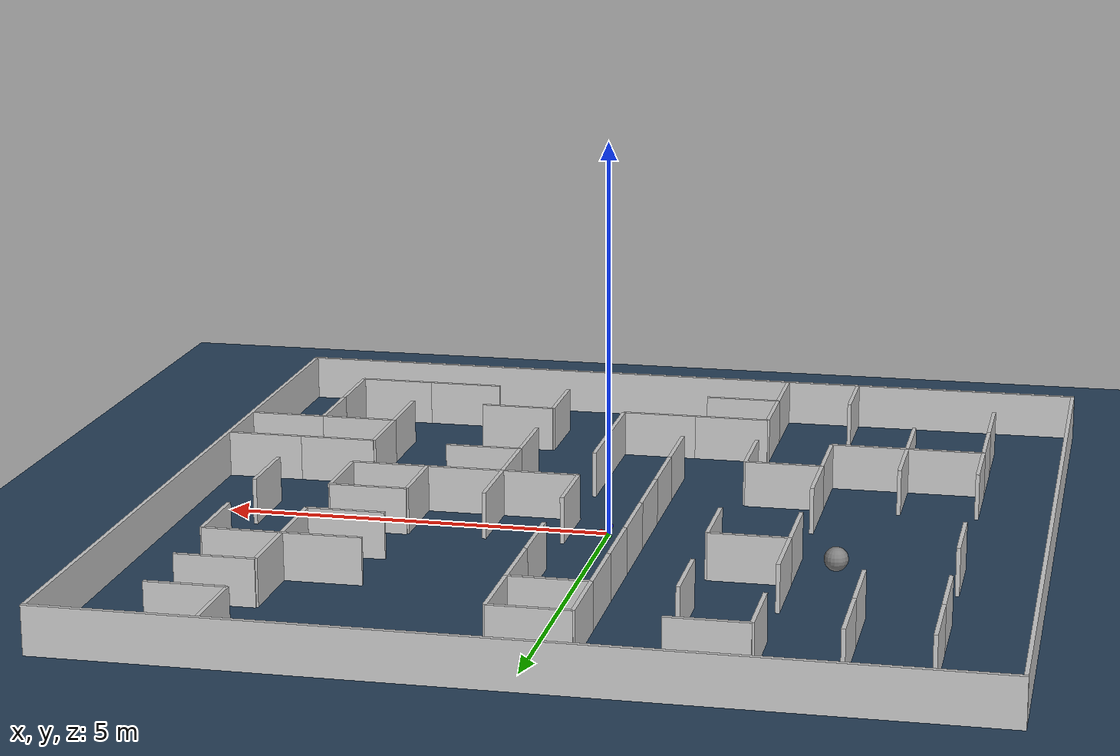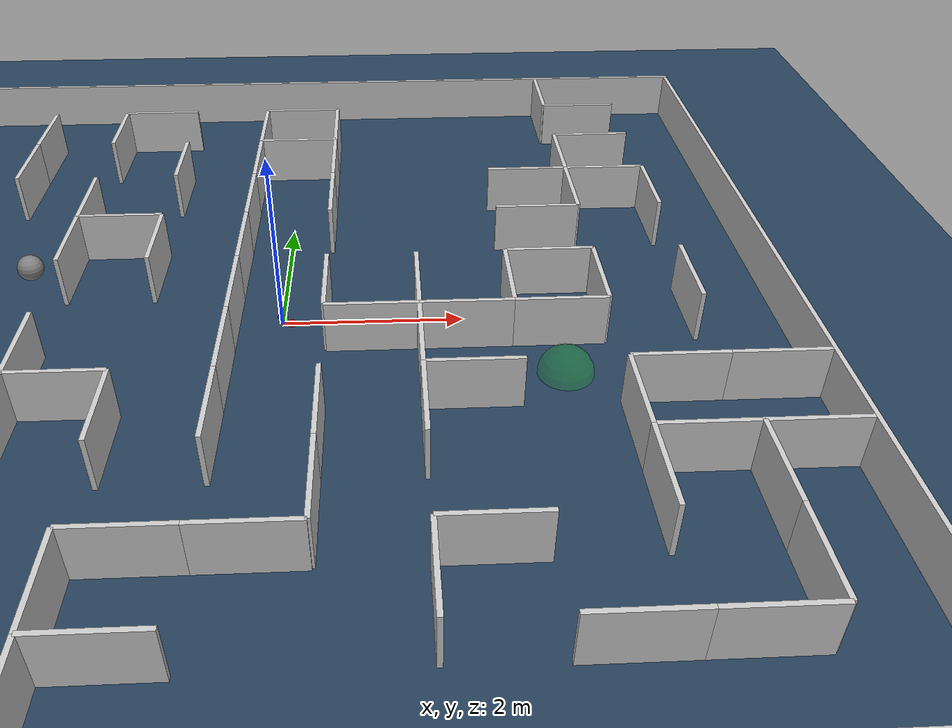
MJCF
<?xml version="1.0" ?>
<mujoco model="generated_maze_environment">
  <option timestep="0.01" integrator="RK4" cone="elliptic"/>
  <default>
    <geom density="1"/>
  </default>
  <asset>
    <texture builtin="gradient" height="3072" rgb1="0.3 0.5 0.7" rgb2="0 0 0" type="skybox" width="512"/>
    <texture builtin="checker" height="300" mark="edge" markrgb="0.8 0.8 0.8" name="groundplane" rgb1="0.2 0.3 0.4" rgb2="0.1 0.2 0.3" type="2d" width="300"/>
    <material name="groundplane" reflectance="0.2" texrepeat="5 5" texture="groundplane" texuniform="true"/>
    <material name="robot" rgba="0.0 1.0 0.0 1"/>
  </asset>
  <worldbody>
    <light dir="0 0 -1" directional="true" pos="0 0 1.5"/>
    <geom condim="4" friction="0.5 0.005 0.001" material="groundplane" name="floor" size="0 0 0.05" type="plane"/>
    <site name="origin_x" pos="0.1 0 0.0" rgba="1 0 0 1" size="0.05" type="sphere"/>
    <site name="origin_y" pos="0 0.1 0" rgba="0 1 0 1" size="0.05" type="sphere"/>
    <site name="origin_z" pos="0 0 0.1" rgba="0 0 1 1" size="0.05" type="sphere"/>
    <body name="walls">
      <geom name="boundary_top" condim="4" pos="0 5.525 0.3" rgba="0.8 0.8 0.8 1" size="5.55 0.025 0.3" type="box"/>
      <geom name="boundary_bottom" condim="4" pos="0 -5.525 0.3" rgba="0.8 0.8 0.8 1" size="5.55 0.025 0.3" type="box"/>
      <geom name="boundary_left" condim="4" pos="-5.525 0 0.3" rgba="0.8 0.8 0.8 1" size="0.025 5.5 0.3" type="box"/>
      <geom name="boundary_right" condim="4" pos="5.525 0 0.3" rgba="0.8 0.8 0.8 1" size="0.025 5.5 0.3" type="box"/>
      <geom name="hwall_1" condim="4" pos="-2.0 4.5 0.3" rgba="0.8 0.8 0.8 1" size="0.5 0.025 0.3" type="box"/>
      <geom name="hwall_2" condim="4" pos="0.0 4.5 0.3" rgba="0.8 0.8 0.8 1" size="0.5 0.025 0.3" type="box"/>
      <geom name="hwall_3" condim="4" pos="4.0 4.5 0.3" rgba="0.8 0.8 0.8 1" size="0.5 0.025 0.3" type="box"/>
      <geom name="hwall_4" condim="4" pos="0.0 3.5 0.3" rgba="0.8 0.8 0.8 1" size="0.5 0.025 0.3" type="box"/>
      <geom name="hwall_5" condim="4" pos="4.0 3.5 0.3" rgba="0.8 0.8 0.8 1" size="0.5 0.025 0.3" type="box"/>
      <geom name="hwall_6" condim="4" pos="3.0 2.5 0.3" rgba="0.8 0.8 0.8 1" size="0.5 0.025 0.3" type="box"/>
      <geom name="hwall_7" condim="4" pos="4.0 2.5 0.3" rgba="0.8 0.8 0.8 1" size="0.5 0.025 0.3" type="box"/>
      <geom name="hwall_8" condim="4" pos="-2.0 1.5 0.3" rgba="0.8 0.8 0.8 1" size="0.5 0.025 0.3" type="box"/>
      <geom name="hwall_9" condim="4" pos="3.0 1.5 0.3" rgba="0.8 0.8 0.8 1" size="0.5 0.025 0.3" type="box"/>
      <geom name="hwall_10" condim="4" pos="3.0 0.5 0.3" rgba="0.8 0.8 0.8 1" size="0.5 0.025 0.3" type="box"/>
      <geom name="hwall_11" condim="4" pos="1.0 -0.5 0.3" rgba="0.8 0.8 0.8 1" size="0.5 0.025 0.3" type="box"/>
      <geom name="hwall_12" condim="4" pos="2.0 -0.5 0.3" rgba="0.8 0.8 0.8 1" size="0.5 0.025 0.3" type="box"/>
      <geom name="hwall_13" condim="4" pos="3.0 -0.5 0.3" rgba="0.8 0.8 0.8 1" size="0.5 0.025 0.3" type="box"/>
      <geom name="hwall_14" condim="4" pos="-2.0 -1.5 0.3" rgba="0.8 0.8 0.8 1" size="0.5 0.025 0.3" type="box"/>
      <geom name="hwall_15" condim="4" pos="2.0 -1.5 0.3" rgba="0.8 0.8 0.8 1" size="0.5 0.025 0.3" type="box"/>
      <geom name="hwall_16" condim="4" pos="4.0 -1.5 0.3" rgba="0.8 0.8 0.8 1" size="0.5 0.025 0.3" type="box"/>
      <geom name="hwall_17" condim="4" pos="5.0 -1.5 0.3" rgba="0.8 0.8 0.8 1" size="0.5 0.025 0.3" type="box"/>
      <geom name="hwall_18" condim="4" pos="-4.0 -2.5 0.3" rgba="0.8 0.8 0.8 1" size="0.5 0.025 0.3" type="box"/>
      <geom name="hwall_19" condim="4" pos="-3.0 -2.5 0.3" rgba="0.8 0.8 0.8 1" size="0.5 0.025 0.3" type="box"/>
      <geom name="hwall_20" condim="4" pos="4.0 -2.5 0.3" rgba="0.8 0.8 0.8 1" size="0.5 0.025 0.3" type="box"/>
      <geom name="hwall_21" condim="4" pos="5.0 -2.5 0.3" rgba="0.8 0.8 0.8 1" size="0.5 0.025 0.3" type="box"/>
      <geom name="hwall_22" condim="4" pos="-1.0 -3.5 0.3" rgba="0.8 0.8 0.8 1" size="0.5 0.025 0.3" type="box"/>
      <geom name="hwall_23" condim="4" pos="0.0 -3.5 0.3" rgba="0.8 0.8 0.8 1" size="0.5 0.025 0.3" type="box"/>
      <geom name="hwall_24" condim="4" pos="2.0 -3.5 0.3" rgba="0.8 0.8 0.8 1" size="0.5 0.025 0.3" type="box"/>
      <geom name="hwall_25" condim="4" pos="-1.0 -4.5 0.3" rgba="0.8 0.8 0.8 1" size="0.5 0.025 0.3" type="box"/>
      <geom name="hwall_26" condim="4" pos="3.0 -4.5 0.3" rgba="0.8 0.8 0.8 1" size="0.5 0.025 0.3" type="box"/>
      <geom name="hwall_27" condim="4" pos="4.0 -4.5 0.3" rgba="0.8 0.8 0.8 1" size="0.5 0.025 0.3" type="box"/>
      <geom name="vwall_28" condim="4" pos="3.5 5.0 0.3" rgba="0.8 0.8 0.8 1" size="0.025 0.5 0.3" type="box"/>
      <geom name="vwall_29" condim="4" pos="-4.5 4.0 0.3" rgba="0.8 0.8 0.8 1" size="0.025 0.5 0.3" type="box"/>
      <geom name="vwall_30" condim="4" pos="-3.5 4.0 0.3" rgba="0.8 0.8 0.8 1" size="0.025 0.5 0.3" type="box"/>
      <geom name="vwall_31" condim="4" pos="-2.5 4.0 0.3" rgba="0.8 0.8 0.8 1" size="0.025 0.5 0.3" type="box"/>
      <geom name="vwall_32" condim="4" pos="-0.5 4.0 0.3" rgba="0.8 0.8 0.8 1" size="0.025 0.5 0.3" type="box"/>
      <geom name="vwall_33" condim="4" pos="0.5 4.0 0.3" rgba="0.8 0.8 0.8 1" size="0.025 0.5 0.3" type="box"/>
      <geom name="vwall_34" condim="4" pos="-4.5 3.0 0.3" rgba="0.8 0.8 0.8 1" size="0.025 0.5 0.3" type="box"/>
      <geom name="vwall_35" condim="4" pos="-3.5 3.0 0.3" rgba="0.8 0.8 0.8 1" size="0.025 0.5 0.3" type="box"/>
      <geom name="vwall_36" condim="4" pos="-1.5 3.0 0.3" rgba="0.8 0.8 0.8 1" size="0.025 0.5 0.3" type="box"/>
      <geom name="vwall_37" condim="4" pos="-0.5 3.0 0.3" rgba="0.8 0.8 0.8 1" size="0.025 0.5 0.3" type="box"/>
      <geom name="vwall_38" condim="4" pos="0.5 3.0 0.3" rgba="0.8 0.8 0.8 1" size="0.025 0.5 0.3" type="box"/>
      <geom name="vwall_39" condim="4" pos="3.5 3.0 0.3" rgba="0.8 0.8 0.8 1" size="0.025 0.5 0.3" type="box"/>
      <geom name="vwall_40" condim="4" pos="-2.5 2.0 0.3" rgba="0.8 0.8 0.8 1" size="0.025 0.5 0.3" type="box"/>
      <geom name="vwall_41" condim="4" pos="-0.5 2.0 0.3" rgba="0.8 0.8 0.8 1" size="0.025 0.5 0.3" type="box"/>
      <geom name="vwall_42" condim="4" pos="0.5 2.0 0.3" rgba="0.8 0.8 0.8 1" size="0.025 0.5 0.3" type="box"/>
      <geom name="vwall_43" condim="4" pos="3.5 2.0 0.3" rgba="0.8 0.8 0.8 1" size="0.025 0.5 0.3" type="box"/>
      <geom name="vwall_44" condim="4" pos="4.5 2.0 0.3" rgba="0.8 0.8 0.8 1" size="0.025 0.5 0.3" type="box"/>
      <geom name="vwall_45" condim="4" pos="-4.5 1.0 0.3" rgba="0.8 0.8 0.8 1" size="0.025 0.5 0.3" type="box"/>
      <geom name="vwall_46" condim="4" pos="-2.5 1.0 0.3" rgba="0.8 0.8 0.8 1" size="0.025 0.5 0.3" type="box"/>
      <geom name="vwall_47" condim="4" pos="-1.5 1.0 0.3" rgba="0.8 0.8 0.8 1" size="0.025 0.5 0.3" type="box"/>
      <geom name="vwall_48" condim="4" pos="-0.5 1.0 0.3" rgba="0.8 0.8 0.8 1" size="0.025 0.5 0.3" type="box"/>
      <geom name="vwall_49" condim="4" pos="-0.5 0.0 0.3" rgba="0.8 0.8 0.8 1" size="0.025 0.5 0.3" type="box"/>
      <geom name="vwall_50" condim="4" pos="0.5 0.0 0.3" rgba="0.8 0.8 0.8 1" size="0.025 0.5 0.3" type="box"/>
      <geom name="vwall_51" condim="4" pos="1.5 0.0 0.3" rgba="0.8 0.8 0.8 1" size="0.025 0.5 0.3" type="box"/>
      <geom name="vwall_52" condim="4" pos="2.5 0.0 0.3" rgba="0.8 0.8 0.8 1" size="0.025 0.5 0.3" type="box"/>
      <geom name="vwall_53" condim="4" pos="3.5 0.0 0.3" rgba="0.8 0.8 0.8 1" size="0.025 0.5 0.3" type="box"/>
      <geom name="vwall_54" condim="4" pos="4.5 0.0 0.3" rgba="0.8 0.8 0.8 1" size="0.025 0.5 0.3" type="box"/>
      <geom name="vwall_55" condim="4" pos="-2.5 -1.0 0.3" rgba="0.8 0.8 0.8 1" size="0.025 0.5 0.3" type="box"/>
      <geom name="vwall_56" condim="4" pos="-0.5 -1.0 0.3" rgba="0.8 0.8 0.8 1" size="0.025 0.5 0.3" type="box"/>
      <geom name="vwall_57" condim="4" pos="1.5 -1.0 0.3" rgba="0.8 0.8 0.8 1" size="0.025 0.5 0.3" type="box"/>
      <geom name="vwall_58" condim="4" pos="-4.5 -2.0 0.3" rgba="0.8 0.8 0.8 1" size="0.025 0.5 0.3" type="box"/>
      <geom name="vwall_59" condim="4" pos="-3.5 -2.0 0.3" rgba="0.8 0.8 0.8 1" size="0.025 0.5 0.3" type="box"/>
      <geom name="vwall_60" condim="4" pos="-2.5 -2.0 0.3" rgba="0.8 0.8 0.8 1" size="0.025 0.5 0.3" type="box"/>
      <geom name="vwall_61" condim="4" pos="-1.5 -2.0 0.3" rgba="0.8 0.8 0.8 1" size="0.025 0.5 0.3" type="box"/>
      <geom name="vwall_62" condim="4" pos="-0.5 -2.0 0.3" rgba="0.8 0.8 0.8 1" size="0.025 0.5 0.3" type="box"/>
      <geom name="vwall_63" condim="4" pos="0.5 -2.0 0.3" rgba="0.8 0.8 0.8 1" size="0.025 0.5 0.3" type="box"/>
      <geom name="vwall_64" condim="4" pos="1.5 -2.0 0.3" rgba="0.8 0.8 0.8 1" size="0.025 0.5 0.3" type="box"/>
      <geom name="vwall_65" condim="4" pos="3.5 -2.0 0.3" rgba="0.8 0.8 0.8 1" size="0.025 0.5 0.3" type="box"/>
      <geom name="vwall_66" condim="4" pos="-4.5 -3.0 0.3" rgba="0.8 0.8 0.8 1" size="0.025 0.5 0.3" type="box"/>
      <geom name="vwall_67" condim="4" pos="-3.5 -3.0 0.3" rgba="0.8 0.8 0.8 1" size="0.025 0.5 0.3" type="box"/>
      <geom name="vwall_68" condim="4" pos="0.5 -3.0 0.3" rgba="0.8 0.8 0.8 1" size="0.025 0.5 0.3" type="box"/>
      <geom name="vwall_69" condim="4" pos="3.5 -3.0 0.3" rgba="0.8 0.8 0.8 1" size="0.025 0.5 0.3" type="box"/>
      <geom name="vwall_70" condim="4" pos="4.5 -3.0 0.3" rgba="0.8 0.8 0.8 1" size="0.025 0.5 0.3" type="box"/>
      <geom name="vwall_71" condim="4" pos="-4.5 -4.0 0.3" rgba="0.8 0.8 0.8 1" size="0.025 0.5 0.3" type="box"/>
      <geom name="vwall_72" condim="4" pos="-1.5 -4.0 0.3" rgba="0.8 0.8 0.8 1" size="0.025 0.5 0.3" type="box"/>
      <geom name="vwall_73" condim="4" pos="1.5 -4.0 0.3" rgba="0.8 0.8 0.8 1" size="0.025 0.5 0.3" type="box"/>
      <geom name="vwall_74" condim="4" pos="4.5 -4.0 0.3" rgba="0.8 0.8 0.8 1" size="0.025 0.5 0.3" type="box"/>
      <geom name="vwall_75" condim="4" pos="-2.5 -5.0 0.3" rgba="0.8 0.8 0.8 1" size="0.025 0.5 0.3" type="box"/>
      <geom name="vwall_76" condim="4" pos="-1.5 -5.0 0.3" rgba="0.8 0.8 0.8 1" size="0.025 0.5 0.3" type="box"/>
    </body>
    <body name="robot">
      <joint name="joint_x" type="slide" pos="0 0 0" axis="1 0 0"/>
      <joint name="joint_y" type="slide" pos="0 0 0" axis="0 1 0"/>
      <geom name="robot" type="sphere" pos="-3.0 1.0 0.2" size="0.15" mass="5.0" friction="1.0 0.005 0.001" condim="4"/>
      <site name="sensor_ball"/>
    </body>
    <site name="goal" pos="3.0 -1.0 0.0" rgba="0 1 0 0.2" size="0.3" type="sphere"/>
  </worldbody>
  <actuator>
    <motor name="actuator_x" joint="joint_x" gear="1" ctrlrange="-1 1"/>
    <motor name="actuator_y" joint="joint_y" gear="1" ctrlrange="-1 1"/>
  </actuator>
</mujoco>
